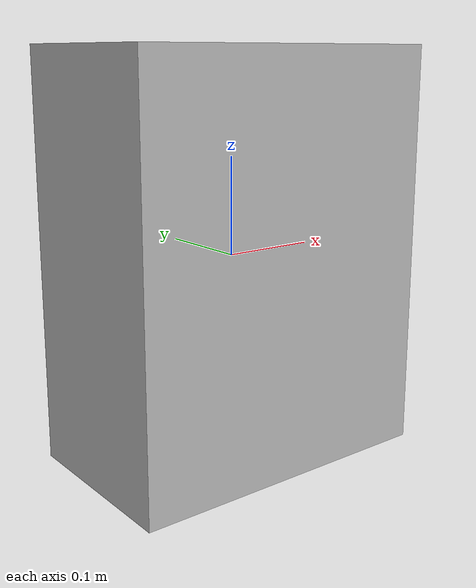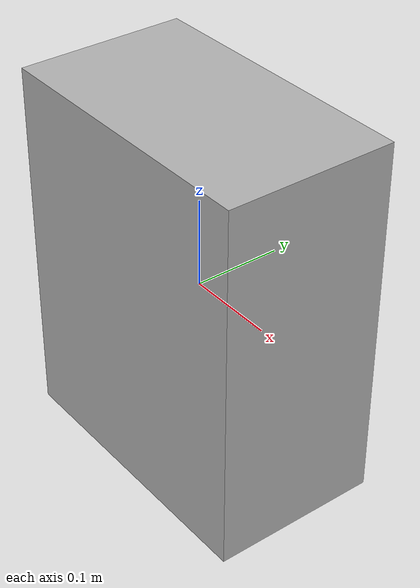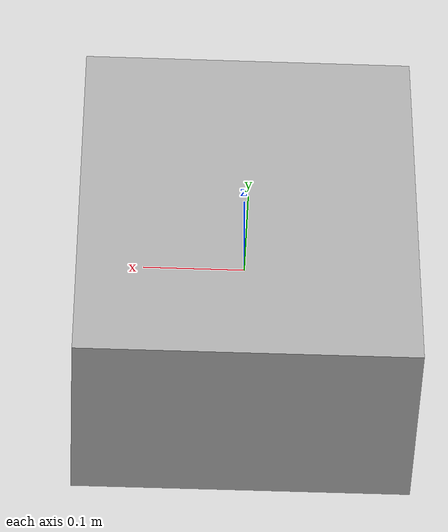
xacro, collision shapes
<?xml version="1.0"?>
<robot name="Angad_Full_Assembly" xmlns:xacro="http://www.ros.org/wiki/xacro">

    <xacro:include filename="$(find Angad_Full_Assembly_description)/urdf/materials.xacro" />
    <xacro:include
        filename="$(find Angad_Full_Assembly_description)/urdf/Angad_Full_Assembly.gazebo" />
    <xacro:include
        filename="$(find Angad_Full_Assembly_description)/urdf/Angad_Full_Assembly.ros2_control.xacro" />
    <link name="base_link">
        <inertial>
            <origin xyz="0.002978049443025171 3.331729238924102e-05 0.8249140352934465" rpy="0 0 0" />
            <mass value="5.565" />
            <inertia ixx="0.0272538" iyy="0.0301722" izz="0.0318504" ixy="0" iyz="-6.3931e-06"
                ixz="-8.63068e-05" />
        </inertial>
        <visual>
            <origin xyz="0 0 0" rpy="0 0 0" />
            <geometry>
                <mesh filename="file://$(find Angad_Full_Assembly_description)/meshes/base_link.stl"
                    scale="0.001 0.001 0.001" />
            </geometry>
            <material name="silver" />
        </visual>
        <collision>
            <origin xyz="0 0 0" rpy="0 0 0" />
            <geometry>
                <box size="0.174 0.13 0.213089" />
            </geometry>
        </collision>
    </link>

    <link name="Torso_1">
        <inertial>
            <origin xyz="0.0012771309079774086 -0.001683956790175145 0.23828496110377373"
                rpy="0 0 0" />
            <mass value="4.529" />
            <inertia ixx="0.0917624" iyy="0.122035" izz="0.0641058" ixy="-0.000780409"
                iyz="0.000501789"
                ixz="0.000264244" />
        </inertial>
        <visual>
            <origin xyz="0.0 -0.0 -0.883471" rpy="0 0 0" />
            <geometry>
                <mesh filename="file://$(find Angad_Full_Assembly_description)/meshes/Torso_1.stl"
                    scale="0.001 0.001 0.001" />
            </geometry>
            <material name="silver" />
        </visual>
        <collision>
            <origin xyz="0.0 -0.0 -0.883471" rpy="0 0 0" />
            <geometry>
                <box size="0.328659 0.189623 0.416284" />
            </geometry>
        </collision>
    </link>

    <link name="wrist_L_1">
        <inertial>
            <origin xyz="-0.014597822663228288 -0.00032820857286989906 -0.04785735645922662"
                rpy="0 0 0" />
            <mass value="0.37" />
            <inertia ixx="0.00178209" iyy="0.00196071" izz="0.00063898" ixy="-1.5e-05"
                iyz="1.7627e-06"
                ixz="0.000172451" />
        </inertial>
        <visual>
            <origin xyz="-0.284491 -0.011757 -0.976612" rpy="0 0 0" />
            <geometry>
                <mesh filename="file://$(find Angad_Full_Assembly_description)/meshes/wrist_L_1.stl"
                    scale="0.001 0.001 0.001" />
            </geometry>
            <material name="silver" />
        </visual>
        <collision>
            <origin xyz="-0.284491 -0.011757 -0.976612" rpy="0 0 0" />
            <geometry>
                <box size="0.07 0.08 0.192" />
            </geometry>
        </collision>
    </link>

    <link name="wrist_R_1">
        <inertial>
            <origin xyz="0.018339170582659936 0.0013563551687613635 -0.04850994481380699"
                rpy="0 0 0" />
            <mass value="0.37" />
            <inertia ixx="0.00176154" iyy="0.00195926" izz="0.000663075" ixy="-7.5e-05"
                iyz="-3.96611e-05"
                ixz="-0.000232091" />
        </inertial>
        <visual>
            <origin xyz="0.284622 0.004379 -0.976602" rpy="0 0 0" />
            <geometry>
                <mesh filename="file://$(find Angad_Full_Assembly_description)/meshes/wrist_R_1.stl"
                    scale="0.001 0.001 0.001" />
            </geometry>
            <material name="silver" />
        </visual>
        <collision>
            <origin xyz="0.284622 0.004379 -0.976602" rpy="0 0 0" />
            <geometry>
                <box size="0.07 0.08 0.192" />
            </geometry>
        </collision>
    </link>

    <link name="shoulder_pitch_L_1">
        <inertial>
            <origin xyz="0.07268848630879282 0.00183776562654197 -3.7835069854885717e-07"
                rpy="0 0 0" />
            <mass value="0.929" />
            <inertia ixx="0.000771942" iyy="0.00141377" izz="0.000904634" ixy="-1.61427e-05"
                iyz="-0.0"
                ixz="-0.0" />
        </inertial>
        <visual>
            <origin xyz="-0.142972 -0.003567 -1.207974" rpy="0 0 0" />
            <geometry>
                <mesh
                    filename="file://$(find Angad_Full_Assembly_description)/meshes/shoulder_pitch_L_1.stl"
                    scale="0.001 0.001 0.001" />
            </geometry>
            <material name="silver" />
        </visual>
        <collision>
            <origin xyz="-0.142972 -0.003567 -1.207974" rpy="0 0 0" />
            <geometry>
                <box size="0.1285 0.0746 0.106" />
            </geometry>
        </collision>
    </link>

    <link name="shoulder_roll_L_1">
        <inertial>
            <origin xyz="0.006820681072588153 0.022543983036535473 -0.04196050745358937" rpy="0 0 0" />
            <mass value="0.64" />
            <inertia ixx="0.0025085" iyy="0.00218566" izz="0.00133528" ixy="-1.06618e-06"
                iyz="5.73603e-05" ixz="0.000212809" />
        </inertial>
        <visual>
            <origin xyz="-0.218947 0.014269 -1.207974" rpy="0 0 0" />
            <geometry>
                <mesh
                    filename="file://$(find Angad_Full_Assembly_description)/meshes/shoulder_roll_L_1.stl"
                    scale="0.001 0.001 0.001" />
            </geometry>
            <material name="silver" />
        </visual>
        <collision>
            <origin xyz="-0.218947 0.014269 -1.207974" rpy="0 0 0" />
            <geometry>
                <box size="0.0785 0.0905 0.134" />
            </geometry>
        </collision>
    </link>

    <link name="bicep_L_1">
        <inertial>
            <origin xyz="0.007274821132527365 0.002336663250654977 -0.04402890372206425" rpy="0 0 0" />
            <mass value="0.648" />
            <inertia ixx="0.00326608" iyy="0.0030984" izz="0.00204111" ixy="2.22586e-06"
                iyz="2.52264e-05"
                ixz="0.000230748" />
        </inertial>
        <visual>
            <origin xyz="-0.237141 -0.010449 -1.101281" rpy="0 0 0" />
            <geometry>
                <mesh filename="file://$(find Angad_Full_Assembly_description)/meshes/bicep_L_1.stl"
                    scale="0.001 0.001 0.001" />
            </geometry>
            <material name="silver" />
        </visual>
        <collision>
            <origin xyz="-0.237141 -0.010449 -1.101281" rpy="0 0 0" />
            <geometry>
                <box size="0.067 0.08 0.171" />
            </geometry>
        </collision>
    </link>

    <link name="shoulder_pitch_R_1">
        <inertial>
            <origin xyz="-0.07268831266820741 -0.0018371985546969628 -3.7835063526614476e-07"
                rpy="0 0 0" />
            <mass value="0.929" />
            <inertia ixx="0.000771942" iyy="0.00141377" izz="0.000904634" ixy="-1.61427e-05"
                iyz="0.0"
                ixz="0.0" />
        </inertial>
        <visual>
            <origin xyz="0.142971 0.003614 -1.207974" rpy="0 0 0" />
            <geometry>
                <mesh
                    filename="file://$(find Angad_Full_Assembly_description)/meshes/shoulder_pitch_R_1.stl"
                    scale="0.001 0.001 0.001" />
            </geometry>
            <material name="silver" />
        </visual>
        <collision>
            <origin xyz="0.142971 0.003614 -1.207974" rpy="0 0 0" />
            <geometry>
                <box size="0.1285 0.0746 0.106" />
            </geometry>
        </collision>
    </link>

    <link name="shoulder_roll_R_1">
        <inertial>
            <origin xyz="-0.00797108983942904 0.022169593166912808 -0.041956895738376465"
                rpy="0 0 0" />
            <mass value="0.64" />
            <inertia ixx="0.00250786" iyy="0.00218651" izz="0.00133485" ixy="1.72721e-05"
                iyz="4.66985e-05" ixz="-0.000214088" />
        </inertial>
        <visual>
            <origin xyz="0.217948 0.025265 -1.207974" rpy="0 0 0" />
            <geometry>
                <mesh
                    filename="file://$(find Angad_Full_Assembly_description)/meshes/shoulder_roll_R_1.stl"
                    scale="0.001 0.001 0.001" />
            </geometry>
            <material name="silver" />
        </visual>
        <collision>
            <origin xyz="0.217948 0.025265 -1.207974" rpy="0 0 0" />
            <geometry>
                <box size="0.0785 0.0905 0.134" />
            </geometry>
        </collision>
    </link>

    <link name="bicep_R_1">
        <inertial>
            <origin xyz="-0.008355433029998388 0.0019109890257454605 -0.043859757836306246"
                rpy="0 0 0" />
            <mass value="0.648" />
            <inertia ixx="0.00326975" iyy="0.00309762" izz="0.00203293" ixy="2.22584e-05"
                iyz="1.18711e-05" ixz="-0.000218874" />
        </inertial>
        <visual>
            <origin xyz="0.237367 0.001498 -1.101281" rpy="0 0 0" />
            <geometry>
                <mesh filename="file://$(find Angad_Full_Assembly_description)/meshes/bicep_R_1.stl"
                    scale="0.001 0.001 0.001" />
            </geometry>
            <material name="silver" />
        </visual>
        <collision>
            <origin xyz="0.237367 0.001498 -1.101281" rpy="0 0 0" />
            <geometry>
                <box size="0.067 0.08 0.171" />
            </geometry>
        </collision>
    </link>

    <link name="torso_pitch_link">
        <inertial>
            <origin xyz="0 0 0" rpy="0 0 0" />
            <mass value="0.01" />
            <inertia ixx="0.0001" iyy="0.0001" izz="0.0001" ixy="0.0" iyz="0.0" ixz="0.0" />
        </inertial>
    </link>

    <joint name="torso_pitch" type="revolute">
        <origin xyz="0.0 0.0 0.883471" rpy="0 0 0" />
        <parent link="base_link" />
        <child link="torso_pitch_link" />
        <axis xyz="0.0 1.0 0.0" />
        <limit effort="100.0" velocity="5.0" lower="-1.57" upper="1.57" />
        <dynamics damping="0.1" friction="0.0" />
    </joint>

    <link name="torso_roll_link">
        <inertial>
            <origin xyz="0 0 0" rpy="0 0 0" />
            <mass value="0.01" />
            <inertia ixx="0.0001" iyy="0.0001" izz="0.0001" ixy="0.0" iyz="0.0" ixz="0.0" />
        </inertial>
    </link>

    <joint name="torso_roll" type="revolute">
        <origin xyz="0.0 0.0 0.0" rpy="0 0 0" />
        <parent link="torso_pitch_link" />
        <child link="torso_roll_link" />
        <axis xyz="1.0 0.0 0.0" />
        <limit effort="100.0" velocity="5.0" lower="-1.57" upper="1.57" />
        <dynamics damping="0.1" friction="0.0" />
    </joint>

    <joint name="torso_yaw" type="revolute">
        <origin xyz="0.0 0.0 0.0" rpy="0 0 0" />
        <parent link="torso_roll_link" />
        <child link="Torso_1" />
        <axis xyz="-0.0 -0.0 1.0" />
        <limit effort="100.0" velocity="5.0" lower="-1.57" upper="1.57" />
        <dynamics damping="0.1" friction="0.0" />
    </joint>

    <joint name="elbow_pitch_l" type="revolute">
        <origin xyz="0.04735 0.001308 -0.124669" rpy="0 0 0" />
        <parent link="bicep_L_1" />
        <child link="wrist_L_1" />
        <axis xyz="-0.984371 -0.029347 -0.173646" />
        <limit effort="100.0" velocity="5.0" lower="-1.57" upper="1.57" />
        <dynamics damping="0.1" friction="0.0" />
    </joint>

    <joint name="elbow_pitch_r" type="revolute">
        <origin xyz="-0.047255 -0.002881 -0.124679" rpy="0 0 0" />
        <parent link="bicep_R_1" />
        <child link="wrist_R_1" />
        <axis xyz="-0.980548 -0.092247 0.173253" />
        <limit effort="100.0" velocity="5.0" lower="-1.57" upper="1.57" />
        <dynamics damping="0.1" friction="0.0" />
    </joint>

    <joint name="shoulder_pitch_l" type="revolute">
        <origin xyz="0.142972 0.003567 0.324503" rpy="0 0 0" />
        <parent link="Torso_1" />
        <child link="shoulder_pitch_L_1" />
        <axis xyz="0.999681 0.025268 0.0" />
        <limit upper="3.141593" lower="-3.141593" effort="100" velocity="100" />
        <dynamics damping="0.1" friction="0.0" />
    </joint>

    <joint name="shoulder_roll_l" type="revolute">
        <origin xyz="0.075975 -0.017836 0.0" rpy="0 0 0" />
        <parent link="shoulder_pitch_L_1" />
        <child link="shoulder_roll_L_1" />
        <axis xyz="0.025268 -0.999681 -0.0" />
        <limit upper="2.792527" lower="0.0" effort="100" velocity="100" />
        <dynamics damping="0.1" friction="0.0" />
    </joint>

    <joint name="elbow_yaw_l" type="revolute">
        <origin xyz="0.018194 0.024718 -0.106693" rpy="0 0 0" />
        <parent link="shoulder_roll_L_1" />
        <child link="bicep_L_1" />
        <axis xyz="0.173593 0.004388 -0.984808" />
        <limit upper="3.141593" lower="-3.141593" effort="100" velocity="100" />
        <dynamics damping="0.1" friction="0.0" />
    </joint>

    <joint name="shoulder_pitch_r" type="revolute">
        <origin xyz="-0.142971 -0.003614 0.324503" rpy="0 0 0" />
        <parent link="Torso_1" />
        <child link="shoulder_pitch_R_1" />
        <axis xyz="0.999681 0.025268 -0.0" />
        <limit upper="3.141593" lower="-3.141593" effort="100" velocity="100" />
        <dynamics damping="0.1" friction="0.0" />
    </joint>

    <joint name="shoulder_roll_r" type="revolute">
        <origin xyz="-0.074977 -0.021651 0.0" rpy="0 0 0" />
        <parent link="shoulder_pitch_R_1" />
        <child link="shoulder_roll_R_1" />
        <axis xyz="0.025268 -0.999681 -0.0" />
        <limit upper="0.174533" lower="-2.879793" effort="100" velocity="100" />
        <dynamics damping="0.1" friction="0.0" />
    </joint>

    <joint name="elbow_yaw_r" type="revolute">
        <origin xyz="-0.019419 0.023767 -0.106693" rpy="0 0 0" />
        <parent link="shoulder_roll_R_1" />
        <child link="bicep_R_1" />
        <axis xyz="-0.173593 -0.004388 -0.984808" />
        <limit upper="3.141593" lower="-3.141593" effort="100" velocity="100" />
        <dynamics damping="0.1" friction="0.0" />
    </joint>

    <xacro:angad_ros2_control name="GazeboSimSystem" />

</robot>

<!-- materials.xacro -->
<robot name="Angad_Full_Assembly" xmlns:xacro="http://www.ros.org/wiki/xacro" >

<material name="silver">
  <color rgba="0.700 0.700 0.700 1.000"/>
</material>

</robot>

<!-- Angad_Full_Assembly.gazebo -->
<robot name="Angad_Full_Assembly" xmlns:xacro="http://www.ros.org/wiki/xacro" >

<xacro:property name="body_color" value="Gazebo/Silver" />

<gazebo>
  <plugin filename="libgz_ros2_control-system.so" name="gz_ros2_control::GazeboSimROS2ControlPlugin">
    <parameters>$(find Angad_Full_Assembly_description)/config/ros2_controllers.yaml</parameters>
  </plugin>
  <plugin filename="gz-sim-imu-system" name="gz::sim::systems::Imu">
  </plugin>
</gazebo>
<gazebo reference="base_link">
  <material>${body_color}</material>
  <mu1>0.5</mu1>
  <mu2>0.5</mu2>
  <self_collide>true</self_collide>
  <gravity>true</gravity>
</gazebo>

<gazebo reference="hip_L_1">
  <material>${body_color}</material>
  <mu1>0.5</mu1>
  <mu2>0.5</mu2>
  <self_collide>true</self_collide>
</gazebo>

<gazebo reference="hip_R_1">
  <material>${body_color}</material>
  <mu1>0.5</mu1>
  <mu2>0.5</mu2>
  <self_collide>true</self_collide>
</gazebo>

<gazebo reference="thigh_L_1">
  <material>${body_color}</material>
  <mu1>0.5</mu1>
  <mu2>0.5</mu2>
  <self_collide>true</self_collide>
</gazebo>

<gazebo reference="thigh_R_1">
  <material>${body_color}</material>
  <mu1>0.5</mu1>
  <mu2>0.5</mu2>
  <self_collide>true</self_collide>
</gazebo>

<gazebo reference="upper_knee_L_1">
  <material>${body_color}</material>
  <mu1>0.5</mu1>
  <mu2>0.5</mu2>
  <self_collide>true</self_collide>
</gazebo>

<gazebo reference="upper_knee_R_1">
  <material>${body_color}</material>
  <mu1>0.5</mu1>
  <mu2>0.5</mu2>
  <self_collide>true</self_collide>
</gazebo>

<gazebo reference="lower_knee_L_1">
  <material>${body_color}</material>
  <mu1>0.5</mu1>
  <mu2>0.5</mu2>
  <self_collide>true</self_collide>
</gazebo>

<gazebo reference="lower_knee_R_1">
  <material>${body_color}</material>
  <mu1>0.5</mu1>
  <mu2>0.5</mu2>
  <self_collide>true</self_collide>
</gazebo>

<gazebo reference="ankle_L_1">
  <material>${body_color}</material>
  <mu1>0.5</mu1>
  <mu2>0.5</mu2>
  <self_collide>true</self_collide>
</gazebo>

<gazebo reference="ankle_R_1">
  <material>${body_color}</material>
  <mu1>0.5</mu1>
  <mu2>0.5</mu2>
  <self_collide>true</self_collide>
</gazebo>

<gazebo reference="feet_L_1">
  <material>${body_color}</material>
  <mu1>2.0</mu1>
  <mu2>2.0</mu2>
  <kp>1000000.0</kp>
  <kd>1.0</kd>
  <self_collide>true</self_collide>
</gazebo>

<gazebo reference="feet_R_1">
  <material>${body_color}</material>
  <mu1>2.0</mu1>
  <mu2>2.0</mu2>
  <kp>1000000.0</kp>
  <kd>1.0</kd>
  <self_collide>true</self_collide>
</gazebo>

<gazebo reference="Torso_1">
  <material>${body_color}</material>
  <mu1>0.5</mu1>
  <mu2>0.5</mu2>
  <self_collide>true</self_collide>
  <sensor name="imu_sensor" type="imu">
    <always_on>1</always_on>
    <update_rate>100</update_rate>
    <visualize>true</visualize>
    <topic>imu</topic>
  </sensor>
</gazebo>

<gazebo reference="wrist_L_1">
  <material>${body_color}</material>
  <mu1>0.5</mu1>
  <mu2>0.5</mu2>
  <self_collide>true</self_collide>
</gazebo>

<gazebo reference="wrist_R_1">
  <material>${body_color}</material>
  <mu1>0.5</mu1>
  <mu2>0.5</mu2>
  <self_collide>true</self_collide>
</gazebo>

<gazebo reference="shoulder_pitch_L_1">
  <material>${body_color}</material>
  <mu1>0.5</mu1>
  <mu2>0.5</mu2>
  <self_collide>true</self_collide>
</gazebo>

<gazebo reference="shoulder_roll_L_1">
  <material>${body_color}</material>
  <mu1>0.5</mu1>
  <mu2>0.5</mu2>
  <self_collide>true</self_collide>
</gazebo>

<gazebo reference="bicep_L_1">
  <material>${body_color}</material>
  <mu1>0.5</mu1>
  <mu2>0.5</mu2>
  <self_collide>true</self_collide>
</gazebo>

<gazebo reference="shoulder_pitch_R_1">
  <material>${body_color}</material>
  <mu1>0.5</mu1>
  <mu2>0.5</mu2>
  <self_collide>true</self_collide>
</gazebo>

<gazebo reference="shoulder_roll_R_1">
  <material>${body_color}</material>
  <mu1>0.5</mu1>
  <mu2>0.5</mu2>
  <self_collide>true</self_collide>
</gazebo>

<gazebo reference="bicep_R_1">
  <material>${body_color}</material>
  <mu1>0.5</mu1>
  <mu2>0.5</mu2>
  <self_collide>true</self_collide>
</gazebo>

</robot>
